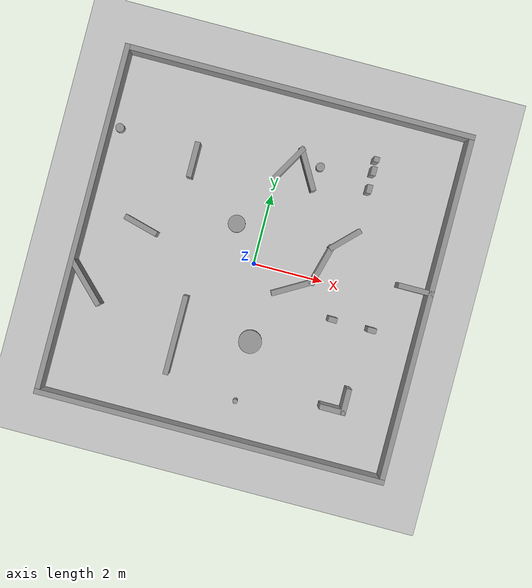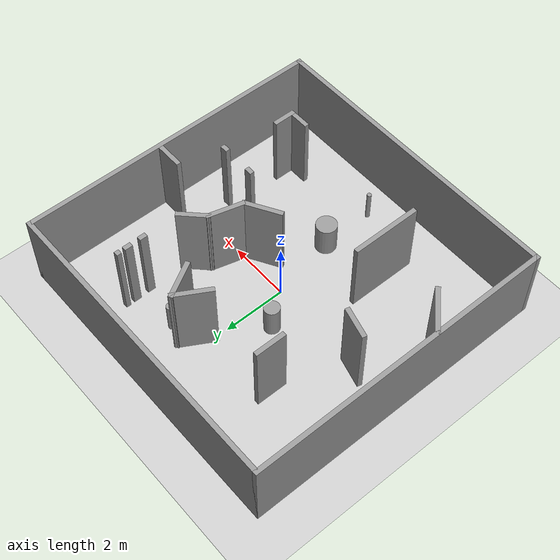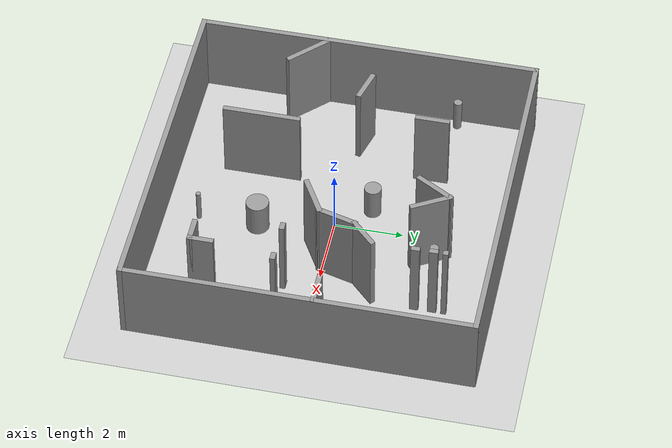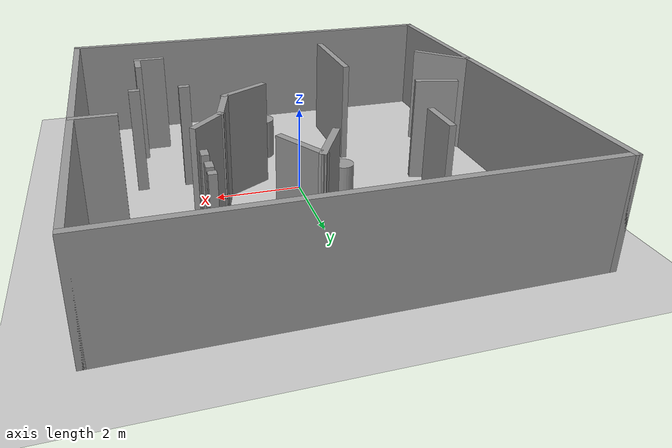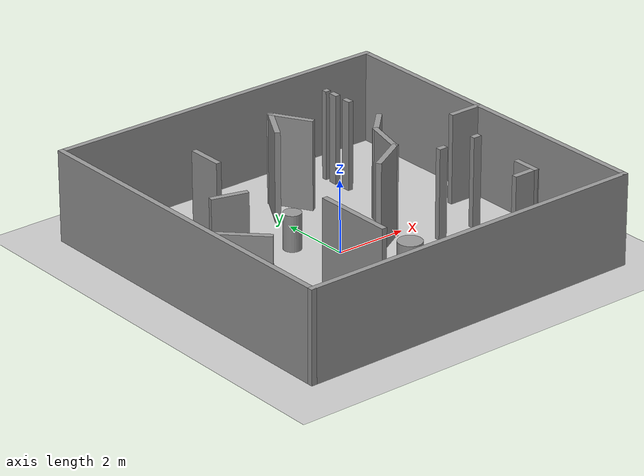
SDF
<sdf version='1.6'>
  <world name='default'>
    <light name='sun' type='directional'>
      <cast_shadows>1</cast_shadows>
      <pose frame=''>0 0 10 0 -0 0</pose>
      <diffuse>0.8 0.8 0.8 1</diffuse>
      <specular>0.2 0.2 0.2 1</specular>
      <attenuation>
        <range>1000</range>
        <constant>0.9</constant>
        <linear>0.01</linear>
        <quadratic>0.001</quadratic>
      </attenuation>
      <direction>-0.5 0.1 -0.9</direction>
    </light>
    <model name='ground_plane'>
      <static>1</static>
      <link name='link'>
        <collision name='collision'>
          <geometry>
            <plane>
              <normal>0 0 1</normal>
              <size>100 100</size>
            </plane>
          </geometry>
          <surface>
            <friction>
              <ode>
                <mu>100</mu>
                <mu2>50</mu2>
              </ode>
              <torsional>
                <ode/>
              </torsional>
            </friction>
            <contact>
              <ode/>
            </contact>
            <bounce/>
          </surface>
          <max_contacts>10</max_contacts>
        </collision>
        <visual name='visual'>
          <cast_shadows>0</cast_shadows>
          <geometry>
            <plane>
              <normal>0 0 1</normal>
              <size>100 100</size>
            </plane>
          </geometry>
          <material>
            <ambient>1 1 1 1</ambient>
            <diffuse>0.8 0.8 0.8 1</diffuse>
            <specular>0.01 0.01 0.01 1</specular>
          </material>
        </visual>
        <self_collide>0</self_collide>
        <kinematic>0</kinematic>
      </link>
    </model>
    <gravity>0 0 -9.8</gravity>
    <magnetic_field>6e-06 2.3e-05 -4.2e-05</magnetic_field>
    <atmosphere type='adiabatic'/>
    <physics name='default_physics' default='0' type='ode'>
      <max_step_size>0.001</max_step_size>
      <real_time_factor>1</real_time_factor>
      <real_time_update_rate>1000</real_time_update_rate>
    </physics>
    <scene>
      <ambient>0.4 0.4 0.4 1</ambient>
      <background>0.7 0.7 0.7 1</background>
      <shadows>1</shadows>
    </scene>
    <spherical_coordinates>
      <surface_model>EARTH_WGS84</surface_model>
      <latitude_deg>0</latitude_deg>
      <longitude_deg>0</longitude_deg>
      <elevation>0</elevation>
      <heading_deg>0</heading_deg>
    </spherical_coordinates>
    <plugin name='gazebo_occupancy_map' filename='libgazebo_2Dmap_plugin.so'>
      <map_resolution>0.025</map_resolution>
      <map_height>0.1</map_height>
    </plugin>
    <gui fullscreen='0'>
      <camera name='user_camera'>
        <pose frame=''>2.13634 -6.24235 22.191 0 1.2458 1.66021</pose>
        <view_controller>orbit</view_controller>
        <projection_type>perspective</projection_type>
      </camera>
    </gui>
    <model name='10x10_training'>
      <pose frame=''>0.025359 -0.006233 0 0 -0 0</pose>
      <link name='Wall_11'>
        <collision name='Wall_11_Collision'>
          <geometry>
            <box>
              <size>10 0.15 2.5</size>
            </box>
          </geometry>
          <pose frame=''>0 0 1.25 0 -0 0</pose>
          <max_contacts>10</max_contacts>
          <surface>
            <contact>
              <ode/>
            </contact>
            <bounce/>
            <friction>
              <torsional>
                <ode/>
              </torsional>
              <ode/>
            </friction>
          </surface>
        </collision>
        <visual name='Wall_11_Visual'>
          <pose frame=''>0 0 1.25 0 -0 0</pose>
          <geometry>
            <box>
              <size>10 0.15 2.5</size>
            </box>
          </geometry>
          <material>
            <script>
              <uri>file://media/materials/scripts/gazebo.material</uri>
              <name>Gazebo/Grey</name>
            </script>
            <ambient>1 1 1 1</ambient>
          </material>
          <meta>
            <layer>0</layer>
          </meta>
        </visual>
        <pose frame=''>0 -4.925 0 0 -0 3.14159</pose>
        <self_collide>0</self_collide>
        <kinematic>0</kinematic>
      </link>
      <link name='Wall_12'>
        <collision name='Wall_12_Collision'>
          <geometry>
            <box>
              <size>10 0.15 2.5</size>
            </box>
          </geometry>
          <pose frame=''>0 0 1.25 0 -0 0</pose>
          <max_contacts>10</max_contacts>
          <surface>
            <contact>
              <ode/>
            </contact>
            <bounce/>
            <friction>
              <torsional>
                <ode/>
              </torsional>
              <ode/>
            </friction>
          </surface>
        </collision>
        <visual name='Wall_12_Visual'>
          <pose frame=''>0 0 1.25 0 -0 0</pose>
          <geometry>
            <box>
              <size>10 0.15 2.5</size>
            </box>
          </geometry>
          <material>
            <script>
              <uri>file://media/materials/scripts/gazebo.material</uri>
              <name>Gazebo/Grey</name>
            </script>
            <ambient>1 1 1 1</ambient>
          </material>
          <meta>
            <layer>0</layer>
          </meta>
        </visual>
        <pose frame=''>-4.925 0 0 0 -0 1.5708</pose>
        <self_collide>0</self_collide>
        <kinematic>0</kinematic>
      </link>
      <link name='Wall_13'>
        <collision name='Wall_13_Collision'>
          <geometry>
            <box>
              <size>10 0.15 2.5</size>
            </box>
          </geometry>
          <pose frame=''>0 0 1.25 0 -0 0</pose>
          <max_contacts>10</max_contacts>
          <surface>
            <contact>
              <ode/>
            </contact>
            <bounce/>
            <friction>
              <torsional>
                <ode/>
              </torsional>
              <ode/>
            </friction>
          </surface>
        </collision>
        <visual name='Wall_13_Visual'>
          <pose frame=''>0 0 1.25 0 -0 0</pose>
          <geometry>
            <box>
              <size>10 0.15 2.5</size>
            </box>
          </geometry>
          <material>
            <script>
              <uri>file://media/materials/scripts/gazebo.material</uri>
              <name>Gazebo/Grey</name>
            </script>
            <ambient>1 1 1 1</ambient>
          </material>
          <meta>
            <layer>0</layer>
          </meta>
        </visual>
        <pose frame=''>0 4.925 0 0 -0 0</pose>
        <self_collide>0</self_collide>
        <kinematic>0</kinematic>
      </link>
      <link name='Wall_15'>
        <collision name='Wall_15_Collision'>
          <geometry>
            <box>
              <size>1 0.15 2.5</size>
            </box>
          </geometry>
          <pose frame=''>0 0 1.25 0 -0 0</pose>
          <max_contacts>10</max_contacts>
          <surface>
            <contact>
              <ode/>
            </contact>
            <bounce/>
            <friction>
              <torsional>
                <ode/>
              </torsional>
              <ode/>
            </friction>
          </surface>
        </collision>
        <visual name='Wall_15_Visual'>
          <pose frame=''>0 0 1.25 0 -0 0</pose>
          <geometry>
            <box>
              <size>1 0.15 2.5</size>
            </box>
          </geometry>
          <material>
            <script>
              <uri>file://media/materials/scripts/gazebo.material</uri>
              <name>Gazebo/Grey</name>
            </script>
            <ambient>1 1 1 1</ambient>
          </material>
          <meta>
            <layer>0</layer>
          </meta>
        </visual>
        <pose frame=''>-2.37163 2.36716 0 0 0 -1.5708</pose>
        <self_collide>0</self_collide>
        <kinematic>0</kinematic>
      </link>
      <link name='Wall_17'>
        <collision name='Wall_17_Collision'>
          <geometry>
            <box>
              <size>1.25 0.15 2.5</size>
            </box>
          </geometry>
          <pose frame=''>0 0 1.25 0 -0 0</pose>
          <max_contacts>10</max_contacts>
          <surface>
            <contact>
              <ode/>
            </contact>
            <bounce/>
            <friction>
              <torsional>
                <ode/>
              </torsional>
              <ode/>
            </friction>
          </surface>
        </collision>
        <visual name='Wall_17_Visual'>
          <pose frame=''>0 0 1.25 0 -0 0</pose>
          <geometry>
            <box>
              <size>1.25 0.15 2.5</size>
            </box>
          </geometry>
          <material>
            <script>
              <uri>file://media/materials/scripts/gazebo.material</uri>
              <name>Gazebo/Grey</name>
            </script>
            <ambient>1 1 1 1</ambient>
          </material>
          <meta>
            <layer>0</layer>
          </meta>
        </visual>
        <pose frame=''>0.198435 2.91724 0 0 0 -2.0944</pose>
        <self_collide>0</self_collide>
        <kinematic>0</kinematic>
      </link>
      <link name='Wall_19'>
        <collision name='Wall_19_Collision'>
          <geometry>
            <box>
              <size>1.25 0.15 2.5</size>
            </box>
          </geometry>
          <pose frame=''>0 0 1.25 0 -0 0</pose>
          <max_contacts>10</max_contacts>
          <surface>
            <contact>
              <ode/>
            </contact>
            <bounce/>
            <friction>
              <torsional>
                <ode/>
              </torsional>
              <ode/>
            </friction>
          </surface>
        </collision>
        <visual name='Wall_19_Visual'>
          <pose frame=''>0 0 1.25 0 -0 0</pose>
          <geometry>
            <box>
              <size>1.25 0.15 2.5</size>
            </box>
          </geometry>
          <material>
            <script>
              <uri>file://media/materials/scripts/gazebo.material</uri>
              <name>Gazebo/Grey</name>
            </script>
            <ambient>1 1 1 1</ambient>
          </material>
          <meta>
            <layer>0</layer>
          </meta>
        </visual>
        <pose frame=''>0.748435 2.91724 0 0 -0 2.0944</pose>
        <self_collide>0</self_collide>
        <kinematic>0</kinematic>
      </link>
      <link name='Wall_21'>
        <collision name='Wall_21_Collision'>
          <geometry>
            <box>
              <size>1 0.15 2.5</size>
            </box>
          </geometry>
          <pose frame=''>0 0 1.25 0 -0 0</pose>
          <max_contacts>10</max_contacts>
          <surface>
            <contact>
              <ode/>
            </contact>
            <bounce/>
            <friction>
              <torsional>
                <ode/>
              </torsional>
              <ode/>
            </friction>
          </surface>
        </collision>
        <visual name='Wall_21_Visual'>
          <pose frame=''>0 0 1.25 0 -0 0</pose>
          <geometry>
            <box>
              <size>1 0.15 2.5</size>
            </box>
          </geometry>
          <material>
            <script>
              <uri>file://media/materials/scripts/gazebo.material</uri>
              <name>Gazebo/Grey</name>
            </script>
            <ambient>1 1 1 1</ambient>
          </material>
          <meta>
            <layer>0</layer>
          </meta>
        </visual>
        <pose frame=''>-3.31415 0.24214 0 0 -0 2.87979</pose>
        <self_collide>0</self_collide>
        <kinematic>0</kinematic>
      </link>
      <link name='Wall_23'>
        <collision name='Wall_23_Collision'>
          <geometry>
            <box>
              <size>1 0.15 2.5</size>
            </box>
          </geometry>
          <pose frame=''>0 0 1.25 0 -0 0</pose>
          <max_contacts>10</max_contacts>
          <surface>
            <contact>
              <ode/>
            </contact>
            <bounce/>
            <friction>
              <torsional>
                <ode/>
              </torsional>
              <ode/>
            </friction>
          </surface>
        </collision>
        <visual name='Wall_23_Visual'>
          <pose frame=''>0 0 1.25 0 -0 0</pose>
          <geometry>
            <box>
              <size>1 0.15 2.5</size>
            </box>
          </geometry>
          <material>
            <script>
              <uri>file://media/materials/scripts/gazebo.material</uri>
              <name>Gazebo/Grey</name>
            </script>
            <ambient>1 1 1 1</ambient>
          </material>
          <meta>
            <layer>0</layer>
          </meta>
        </visual>
        <pose frame=''>2.25467 1.28885 0 0 0 -2.35619</pose>
        <self_collide>0</self_collide>
        <kinematic>0</kinematic>
      </link>
      <link name='Wall_24'>
        <collision name='Wall_24_Collision'>
          <geometry>
            <box>
              <size>1.25 0.15 2.5</size>
            </box>
          </geometry>
          <pose frame=''>0 0 1.25 0 -0 0</pose>
          <max_contacts>10</max_contacts>
          <surface>
            <contact>
              <ode/>
            </contact>
            <bounce/>
            <friction>
              <torsional>
                <ode/>
              </torsional>
              <ode/>
            </friction>
          </surface>
        </collision>
        <visual name='Wall_24_Visual'>
          <pose frame=''>0 0 1.25 0 -0 0</pose>
          <geometry>
            <box>
              <size>1.25 0.15 2.5</size>
            </box>
          </geometry>
          <material>
            <script>
              <uri>file://media/materials/scripts/gazebo.material</uri>
              <name>Gazebo/Grey</name>
            </script>
            <ambient>1 1 1 1</ambient>
          </material>
          <meta>
            <layer>0</layer>
          </meta>
        </visual>
        <pose frame=''>1.8118 0.45707 0 0 0 -1.8326</pose>
        <self_collide>0</self_collide>
        <kinematic>0</kinematic>
      </link>
      <link name='Wall_25'>
        <collision name='Wall_25_Collision'>
          <geometry>
            <box>
              <size>1.25 0.15 2.5</size>
            </box>
          </geometry>
          <pose frame=''>0 0 1.25 0 -0 0</pose>
          <max_contacts>10</max_contacts>
          <surface>
            <contact>
              <ode/>
            </contact>
            <bounce/>
            <friction>
              <torsional>
                <ode/>
              </torsional>
              <ode/>
            </friction>
          </surface>
        </collision>
        <visual name='Wall_25_Visual'>
          <pose frame=''>0 0 1.25 0 -0 0</pose>
          <geometry>
            <box>
              <size>1.25 0.15 2.5</size>
            </box>
          </geometry>
          <material>
            <script>
              <uri>file://media/materials/scripts/gazebo.material</uri>
              <name>Gazebo/Grey</name>
            </script>
            <ambient>1 1 1 1</ambient>
          </material>
          <meta>
            <layer>0</layer>
          </meta>
        </visual>
        <pose frame=''>1.19313 -0.349189 0 0 0 -2.61799</pose>
        <self_collide>0</self_collide>
        <kinematic>0</kinematic>
      </link>
      <link name='Wall_27'>
        <collision name='Wall_27_Collision'>
          <geometry>
            <box>
              <size>0.75 0.15 2.5</size>
            </box>
          </geometry>
          <pose frame=''>0 0 1.25 0 -0 0</pose>
          <max_contacts>10</max_contacts>
          <surface>
            <contact>
              <ode/>
            </contact>
            <bounce/>
            <friction>
              <torsional>
                <ode/>
              </torsional>
              <ode/>
            </friction>
          </surface>
        </collision>
        <visual name='Wall_27_Visual'>
          <pose frame=''>0 0 1.25 0 -0 0</pose>
          <geometry>
            <box>
              <size>0.75 0.15 2.5</size>
            </box>
          </geometry>
          <material>
            <script>
              <uri>file://media/materials/scripts/gazebo.material</uri>
              <name>Gazebo/Grey</name>
            </script>
            <ambient>1 1 1 1</ambient>
          </material>
          <meta>
            <layer>0</layer>
          </meta>
        </visual>
        <pose frame=''>3.41102 -3.03745 0 0 -0 1.5708</pose>
        <self_collide>0</self_collide>
        <kinematic>0</kinematic>
      </link>
      <link name='Wall_29'>
        <collision name='Wall_29_Collision'>
          <geometry>
            <box>
              <size>0.75 0.15 2.5</size>
            </box>
          </geometry>
          <pose frame=''>0 0 1.25 0 -0 0</pose>
          <max_contacts>10</max_contacts>
          <surface>
            <contact>
              <ode/>
            </contact>
            <bounce/>
            <friction>
              <torsional>
                <ode/>
              </torsional>
              <ode/>
            </friction>
          </surface>
        </collision>
        <visual name='Wall_29_Visual'>
          <pose frame=''>0 0 1.25 0 -0 0</pose>
          <geometry>
            <box>
              <size>0.75 0.15 2.5</size>
            </box>
          </geometry>
          <material>
            <script>
              <uri>file://media/materials/scripts/gazebo.material</uri>
              <name>Gazebo/Grey</name>
            </script>
            <ambient>1 1 1 1</ambient>
          </material>
          <meta>
            <layer>0</layer>
          </meta>
        </visual>
        <pose frame=''>3.11102 -3.33745 0 0 -0 3.14159</pose>
        <self_collide>0</self_collide>
        <kinematic>0</kinematic>
      </link>
      <link name='Wall_31'>
        <collision name='Wall_31_Collision'>
          <geometry>
            <box>
              <size>2.25 0.15 2.5</size>
            </box>
          </geometry>
          <pose frame=''>0 0 1.25 0 -0 0</pose>
          <max_contacts>10</max_contacts>
          <surface>
            <contact>
              <ode/>
            </contact>
            <bounce/>
            <friction>
              <torsional>
                <ode/>
              </torsional>
              <ode/>
            </friction>
          </surface>
        </collision>
        <visual name='Wall_31_Visual'>
          <pose frame=''>0 0 1.25 0 -0 0</pose>
          <geometry>
            <box>
              <size>2.25 0.15 2.5</size>
            </box>
          </geometry>
          <material>
            <script>
              <uri>file://media/materials/scripts/gazebo.material</uri>
              <name>Gazebo/Grey</name>
            </script>
            <ambient>1 1 1 1</ambient>
          </material>
          <meta>
            <layer>0</layer>
          </meta>
        </visual>
        <pose frame=''>-1.60832 -2.44448 0 0 0 -1.5708</pose>
        <self_collide>0</self_collide>
        <kinematic>0</kinematic>
      </link>
      <link name='Wall_33'>
        <collision name='Wall_33_Collision'>
          <geometry>
            <box>
              <size>1 0.15 2.5</size>
            </box>
          </geometry>
          <pose frame=''>0 0 1.25 0 -0 0</pose>
          <max_contacts>10</max_contacts>
          <surface>
            <contact>
              <ode/>
            </contact>
            <bounce/>
            <friction>
              <torsional>
                <ode/>
              </torsional>
              <ode/>
            </friction>
          </surface>
        </collision>
        <visual name='Wall_33_Visual'>
          <pose frame=''>0 0 1.25 0 -0 0</pose>
          <geometry>
            <box>
              <size>1 0.15 2.5</size>
            </box>
          </geometry>
          <material>
            <script>
              <uri>file://media/materials/scripts/gazebo.material</uri>
              <name>Gazebo/Grey</name>
            </script>
            <ambient>1 1 1 1</ambient>
          </material>
          <meta>
            <layer>0</layer>
          </meta>
        </visual>
        <pose frame=''>4.48951 0.45597 0 0 -0 3.14159</pose>
        <self_collide>0</self_collide>
        <kinematic>0</kinematic>
      </link>
      <link name='Wall_35'>
        <collision name='Wall_35_Collision'>
          <geometry>
            <box>
              <size>1.5 0.15 2.5</size>
            </box>
          </geometry>
          <pose frame=''>0 0 1.25 0 -0 0</pose>
          <max_contacts>10</max_contacts>
          <surface>
            <contact>
              <ode/>
            </contact>
            <bounce/>
            <friction>
              <torsional>
                <ode/>
              </torsional>
              <ode/>
            </friction>
          </surface>
        </collision>
        <visual name='Wall_35_Visual'>
          <pose frame=''>0 0 1.25 0 -0 0</pose>
          <geometry>
            <box>
              <size>1.5 0.15 2.5</size>
            </box>
          </geometry>
          <material>
            <script>
              <uri>file://media/materials/scripts/gazebo.material</uri>
              <name>Gazebo/Grey</name>
            </script>
            <ambient>1 1 1 1</ambient>
          </material>
          <meta>
            <layer>0</layer>
          </meta>
        </visual>
        <pose frame=''>-4.41557 -1.6636 0 0 0 -0.785398</pose>
        <self_collide>0</self_collide>
        <kinematic>0</kinematic>
      </link>
      <link name='Wall_9'>
        <collision name='Wall_9_Collision'>
          <geometry>
            <box>
              <size>10 0.15 2.5</size>
            </box>
          </geometry>
          <pose frame=''>0 0 1.25 0 -0 0</pose>
          <max_contacts>10</max_contacts>
          <surface>
            <contact>
              <ode/>
            </contact>
            <bounce/>
            <friction>
              <torsional>
                <ode/>
              </torsional>
              <ode/>
            </friction>
          </surface>
        </collision>
        <visual name='Wall_9_Visual'>
          <pose frame=''>0 0 1.25 0 -0 0</pose>
          <geometry>
            <box>
              <size>10 0.15 2.5</size>
            </box>
          </geometry>
          <material>
            <script>
              <uri>file://media/materials/scripts/gazebo.material</uri>
              <name>Gazebo/Grey</name>
            </script>
            <ambient>1 1 1 1</ambient>
          </material>
          <meta>
            <layer>0</layer>
          </meta>
        </visual>
        <pose frame=''>4.925 0 0 0 0 -1.5708</pose>
        <self_collide>0</self_collide>
        <kinematic>0</kinematic>
      </link>
      <static>1</static>
    </model>
    <model name='cylinder0'>
      <pose frame=''>-0.748615 0.967609 0.5 0 -0 0</pose>
      <link name='link'>
        <collision name='collision'>
          <geometry>
            <cylinder>
              <radius>0.245872</radius>
              <length>1</length>
            </cylinder>
          </geometry>
          <max_contacts>10</max_contacts>
          <surface>
            <contact>
              <ode/>
            </contact>
            <bounce/>
            <friction>
              <torsional>
                <ode/>
              </torsional>
              <ode/>
            </friction>
          </surface>
        </collision>
        <visual name='visual'>
          <geometry>
            <cylinder>
              <radius>0.245872</radius>
              <length>1</length>
            </cylinder>
          </geometry>
          <material>
            <script>
              <name>Gazebo/Grey</name>
              <uri>file://media/materials/scripts/gazebo.material</uri>
            </script>
          </material>
        </visual>
        <self_collide>0</self_collide>
        <kinematic>0</kinematic>
      </link>
      <static>1</static>
    </model>
    <model name='cylinder1'>
      <pose frame=''>.48 -3.86 0.5 -0 -0 -1e-06</pose>
      <link name='link'>
        <collision name='collision'>
          <geometry>
            <cylinder>
              <radius>0.07</radius>
              <length>1</length>
            </cylinder>
          </geometry>
          <max_contacts>10</max_contacts>
          <surface>
            <contact>
              <ode/>
            </contact>
            <bounce/>
            <friction>
              <torsional>
                <ode/>
              </torsional>
              <ode/>
            </friction>
          </surface>
        </collision>
        <visual name='visual'>
          <geometry>
            <cylinder>
              <radius>0.07</radius>
              <length>1</length>
            </cylinder>
          </geometry>
          <material>
            <script>
              <name>Gazebo/Grey</name>
              <uri>file://media/materials/scripts/gazebo.material</uri>
            </script>
          </material>
        </visual>
        <self_collide>0</self_collide>
        <kinematic>0</kinematic>
      </link>
      <static>1</static>
    </model>
    <model name='cylinder2'>
      <pose frame=''>-4.6 2.73372 0.5 0 -0 -1e-06</pose>
      <link name='link'>
        <inertial>
          <mass>1</mass>
          <inertia>
            <ixx>0.145833</ixx>
            <ixy>0</ixy>
            <ixz>0</ixz>
            <iyy>0.145833</iyy>
            <iyz>0</iyz>
            <izz>0.125</izz>
          </inertia>
        </inertial>
        <collision name='collision'>
          <geometry>
            <cylinder>
              <radius>0.122936</radius>
              <length>1</length>
            </cylinder>
          </geometry>
          <max_contacts>10</max_contacts>
          <surface>
            <contact>
              <ode/>
            </contact>
            <bounce/>
            <friction>
              <torsional>
                <ode/>
              </torsional>
              <ode/>
            </friction>
          </surface>
        </collision>
        <visual name='visual'>
          <geometry>
            <cylinder>
              <radius>0.122936</radius>
              <length>1</length>
            </cylinder>
          </geometry>
          <material>
            <script>
              <name>Gazebo/Grey</name>
              <uri>file://media/materials/scripts/gazebo.material</uri>
            </script>
          </material>
        </visual>
        <self_collide>0</self_collide>
        <kinematic>0</kinematic>
      </link>
      <static>1</static>
    </model>
    <model name='unit_cylinder_clone_1'>
      <pose frame=''>1.11716 3.10134 0.499993 -0 -0 -1e-06</pose>
      <link name='link'>
        <collision name='collision'>
          <geometry>
            <cylinder>
              <radius>0.122936</radius>
              <length>1</length>
            </cylinder>
          </geometry>
          <max_contacts>10</max_contacts>
          <surface>
            <contact>
              <ode/>
            </contact>
            <bounce/>
            <friction>
              <torsional>
                <ode/>
              </torsional>
              <ode/>
            </friction>
          </surface>
        </collision>
        <visual name='visual'>
          <geometry>
            <cylinder>
              <radius>0.122936</radius>
              <length>1</length>
            </cylinder>
          </geometry>
          <material>
            <script>
              <name>Gazebo/Grey</name>
              <uri>file://media/materials/scripts/gazebo.material</uri>
            </script>
          </material>
        </visual>
        <self_collide>0</self_collide>
        <kinematic>0</kinematic>
      </link>
      <static>1</static>
    </model>
    <model name='cylinder4'>
      <pose frame=''>.46 -2.14 0.5 -0 -0 -1e-06</pose>
      <link name='link'>
        <collision name='collision'>
          <geometry>
            <cylinder>
              <radius>0.33</radius>
              <length>1</length>
            </cylinder>
          </geometry>
          <max_contacts>10</max_contacts>
          <surface>
            <contact>
              <ode/>
            </contact>
            <bounce/>
            <friction>
              <torsional>
                <ode/>
              </torsional>
              <ode/>
            </friction>
          </surface>
        </collision>
        <visual name='visual'>
          <geometry>
            <cylinder>
              <radius>0.33</radius>
              <length>1</length>
            </cylinder>
          </geometry>
          <material>
            <script>
              <name>Gazebo/Grey</name>
              <uri>file://media/materials/scripts/gazebo.material</uri>
            </script>
          </material>
        </visual>
        <self_collide>0</self_collide>
        <kinematic>0</kinematic>
      </link>
      <static>1</static>
    </model>
    <model name='extra_gaps'>
      <pose frame=''>0.885573 -7.24674 0 0 -0 0</pose>
      <link name='Wall_46'>
        <collision name='Wall_46_Collision'>
          <geometry>
            <box>
              <size>0.16 0.15 2.5</size>
            </box>
          </geometry>
          <pose frame=''>0 0 1.25 0 -0 0</pose>
          <max_contacts>10</max_contacts>
          <surface>
            <contact>
              <ode/>
            </contact>
            <bounce/>
            <friction>
              <torsional>
                <ode/>
              </torsional>
              <ode/>
            </friction>
          </surface>
        </collision>
        <visual name='Wall_46_Visual'>
          <pose frame=''>0 0 1.25 0 -0 0</pose>
          <geometry>
            <box>
              <size>0.16 0.15 2.5</size>
            </box>
          </geometry>
          <material>
            <script>
              <uri>file://media/materials/scripts/gazebo.material</uri>
              <name>Gazebo/Grey</name>
            </script>
            <ambient>1 1 1 1</ambient>
          </material>
          <meta>
            <layer>0</layer>
          </meta>
        </visual>
        <pose frame=''>1.66561 10.8978 0 0 -0 0</pose>
        <self_collide>0</self_collide>
        <kinematic>0</kinematic>
      </link>
      <link name='Wall_48'>
        <collision name='Wall_48_Collision'>
          <geometry>
            <box>
              <size>0.25 0.15 2.5</size>
            </box>
          </geometry>
          <pose frame=''>0 0 1.25 0 -0 0</pose>
          <max_contacts>10</max_contacts>
          <surface>
            <contact>
              <ode/>
            </contact>
            <bounce/>
            <friction>
              <torsional>
                <ode/>
              </torsional>
              <ode/>
            </friction>
          </surface>
        </collision>
        <visual name='Wall_48_Visual'>
          <pose frame=''>0 0 1.25 0 -0 0</pose>
          <geometry>
            <box>
              <size>0.25 0.15 2.5</size>
            </box>
          </geometry>
          <material>
            <script>
              <uri>file://media/materials/scripts/gazebo.material</uri>
              <name>Gazebo/Grey</name>
            </script>
            <ambient>1 1 1 1</ambient>
          </material>
          <meta>
            <layer>0</layer>
          </meta>
        </visual>
        <pose frame=''>1.6706 10.5678 0 0 0 -1.5708</pose>
        <self_collide>0</self_collide>
        <kinematic>0</kinematic>
      </link>
      <link name='Wall_50'>
        <collision name='Wall_50_Collision'>
          <geometry>
            <box>
              <size>0.25 0.15 2.5</size>
            </box>
          </geometry>
          <pose frame=''>0 0 1.25 0 -0 0</pose>
          <max_contacts>10</max_contacts>
          <surface>
            <contact>
              <ode/>
            </contact>
            <bounce/>
            <friction>
              <torsional>
                <ode/>
              </torsional>
              <ode/>
            </friction>
          </surface>
        </collision>
        <visual name='Wall_50_Visual'>
          <pose frame=''>0 0 1.25 0 -0 0</pose>
          <geometry>
            <box>
              <size>0.25 0.15 2.5</size>
            </box>
          </geometry>
          <material>
            <script>
              <uri>file://media/materials/scripts/gazebo.material</uri>
              <name>Gazebo/Grey</name>
            </script>
            <ambient>1 1 1 1</ambient>
          </material>
          <meta>
            <layer>0</layer>
          </meta>
        </visual>
        <pose frame=''>1.6806 10.0578 0 0 0 -1.5708</pose>
        <self_collide>0</self_collide>
        <kinematic>0</kinematic>
      </link>
      <link name='Wall_54'>
        <collision name='Wall_54_Collision'>
          <geometry>
            <box>
              <size>0.25 0.15 2.5</size>
            </box>
          </geometry>
          <pose frame=''>0 0 1.25 0 -0 0</pose>
          <max_contacts>10</max_contacts>
          <surface>
            <contact>
              <ode/>
            </contact>
            <bounce/>
            <friction>
              <torsional>
                <ode/>
              </torsional>
              <ode/>
            </friction>
          </surface>
        </collision>
        <visual name='Wall_54_Visual'>
          <pose frame=''>0 0 1.25 0 -0 0</pose>
          <geometry>
            <box>
              <size>0.25 0.15 2.5</size>
            </box>
          </geometry>
          <material>
            <script>
              <uri>file://media/materials/scripts/gazebo.material</uri>
              <name>Gazebo/Grey</name>
            </script>
            <ambient>1 1 1 1</ambient>
          </material>
          <meta>
            <layer>0</layer>
          </meta>
        </visual>
        <pose frame=''>1.62061 6.30778 0 0 -0 0</pose>
        <self_collide>0</self_collide>
        <kinematic>0</kinematic>
      </link>
      <link name='Wall_56'>
        <collision name='Wall_56_Collision'>
          <geometry>
            <box>
              <size>0.25 0.15 2.5</size>
            </box>
          </geometry>
          <pose frame=''>0 0 1.25 0 -0 0</pose>
          <max_contacts>10</max_contacts>
          <surface>
            <contact>
              <ode/>
            </contact>
            <bounce/>
            <friction>
              <torsional>
                <ode/>
              </torsional>
              <ode/>
            </friction>
          </surface>
        </collision>
        <visual name='Wall_56_Visual'>
          <pose frame=''>0 0 1.25 0 -0 0</pose>
          <geometry>
            <box>
              <size>0.25 0.15 2.5</size>
            </box>
          </geometry>
          <material>
            <script>
              <uri>file://media/materials/scripts/gazebo.material</uri>
              <name>Gazebo/Grey</name>
            </script>
            <ambient>1 1 1 1</ambient>
          </material>
          <meta>
            <layer>0</layer>
          </meta>
        </visual>
        <pose frame=''>2.7406 6.29779 0 0 -0 0</pose>
        <self_collide>0</self_collide>
        <kinematic>0</kinematic>
      </link>
      <static>1</static>
    </model>
  </world>
</sdf>
